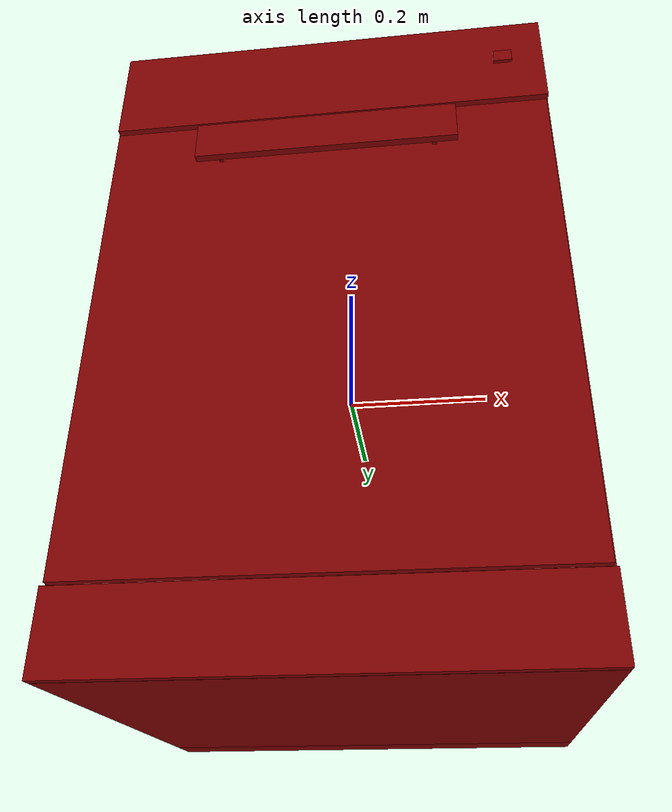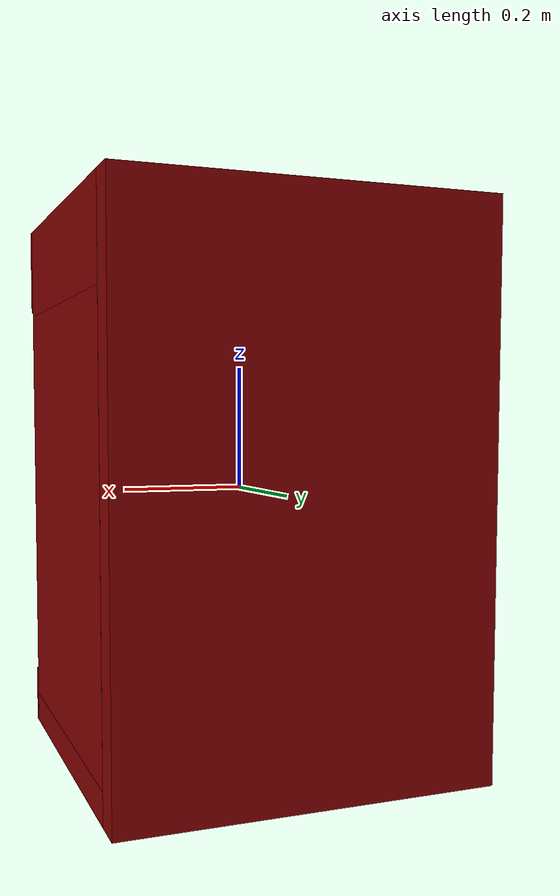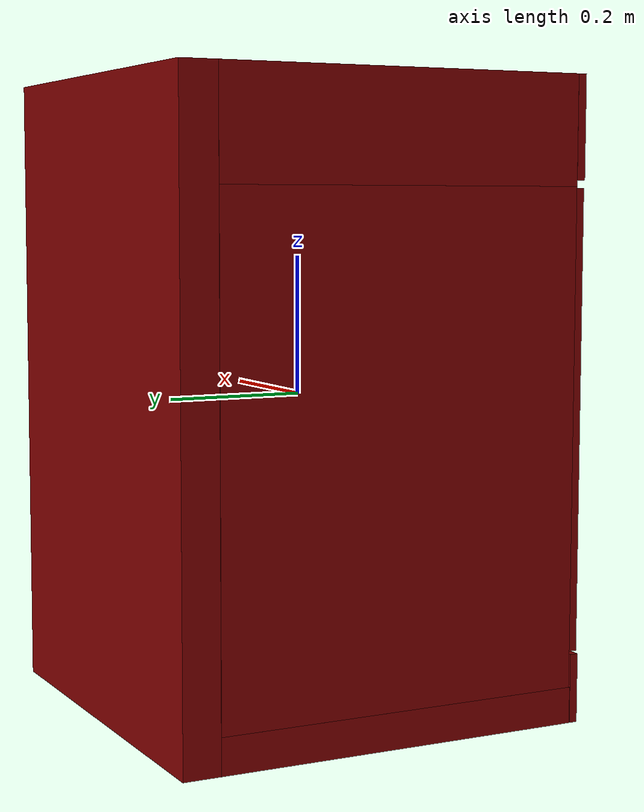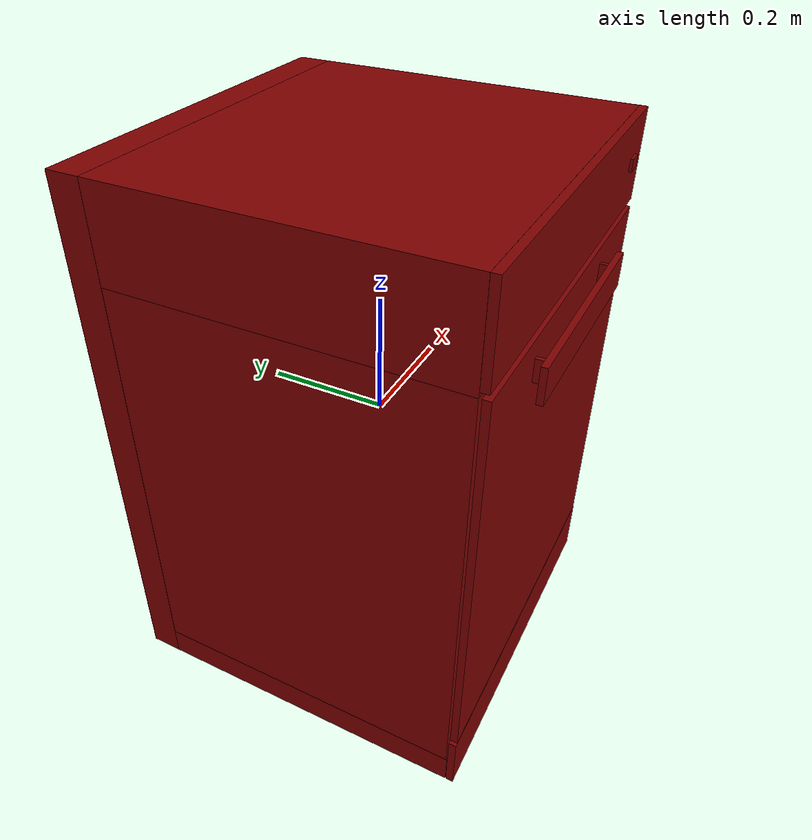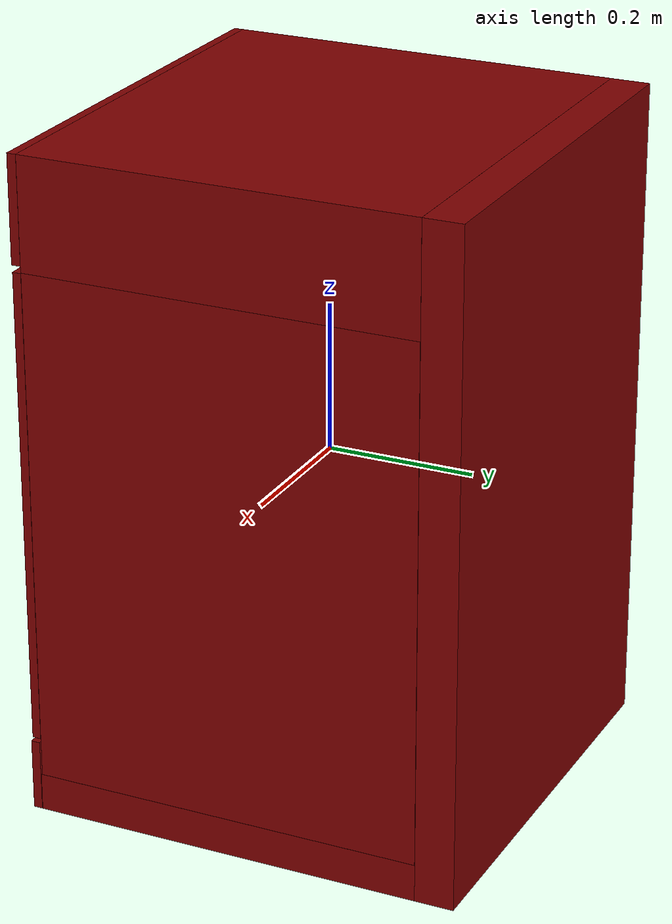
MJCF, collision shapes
<?xml version='1.0' encoding='UTF-8'?>
<mujoco model="model">
  <option timestep="0.002" gravity="0.0 0.0 -9.81"/>
  <compiler angle="radian"/>
  <asset>
    <mesh file="visuals/button_power.obj" name="button_power_vis"/>
    <mesh file="visuals/Body001.obj" name="Body001_vis"/>
    <mesh file="visuals/door.obj" name="door_vis"/>
    <mesh file="visuals/rack0.obj" name="rack0_vis"/>
    <mesh file="visuals/rack1.obj" name="rack1_vis"/>
    <texture file="visuals/T_BC001.png" name="Body001_material" type="2d"/>
    <material name="Body001_material" rgba="1 1 1 1.0" texture="Body001_material" shininess="0.1" specular="5"/>
    <texture file="visuals/T_BC001.png" name="button_power_material" type="2d"/>
    <material name="button_power_material" rgba="1 1 1 1.0" texture="button_power_material" shininess="0.1" specular="5"/>
    <texture file="visuals/T_BC001.png" name="door_material" type="2d"/>
    <material name="door_material" rgba="1 1 1 1.0" texture="door_material" shininess="0.1" specular="5"/>
    <texture file="visuals/T_BC001.png" name="rack0_material" type="2d"/>
    <material name="rack0_material" rgba="1 1 1 1.0" texture="rack0_material" shininess="0.1" specular="5"/>
    <texture file="visuals/T_BC001.png" name="rack1_material" type="2d"/>
    <material name="rack1_material" rgba="1 1 1 1.0" texture="rack1_material" shininess="0.1" specular="5"/>
  </asset>
  <default>
    <default class="visual">
      <geom conaffinity="0" contype="0" group="1" type="mesh"/>
    </default>
    <default class="collision">
      <geom group="0" rgba="0.5 0 0 0.5"/>
    </default>
    <default class="spawn">
      <geom group="0" rgba="1 1 1 0.5" contype="0" conaffinity="0"/>
      <site group="0" rgba="1 1 1 0.5"/>
    </default>
    <default class="region">
      <geom group="1" conaffinity="0" contype="0" rgba="0 1 0 0"/>
    </default>
  </default>
  <worldbody>
    <body>
      <body name="object">
        <geom mesh="Body001_vis" type="mesh" solimp="0.998 0.998 0.001" solref="0.001 1" friction="0.95 0.3 0.1" class="visual" material="Body001_material"/>
        <geom class="collision" type="box" pos="0.00000000 -0.00770898 0.37426713" size="0.29999998211860657 0.26645833253860474 0.07573285698890686" quat="1.0 0.0 0.0 0.0"/>
        <geom class="collision" type="box" pos="-0.00000001 0.28534019 0.00000001" size="0.2999919652938843 0.02650301903486252 0.4499873220920563" quat="1.0 0.0 0.0 0.0"/>
        <geom class="collision" type="box" pos="0.00000000 -0.28211290 -0.40113685" size="0.2999922037124634 0.005994515493512154 0.04886157438158989" quat="1.0 0.0 0.0 0.0"/>
        <geom class="collision" type="box" pos="-0.27947456 -0.00772024 -0.04921260" size="0.020524464547634125 0.26619383692741394 0.3494606614112854" quat="1.0 0.0 0.0 0.0"/>
        <geom class="collision" type="box" pos="0.27941176 -0.00772024 -0.04921260" size="0.020587289705872536 0.26619410514831543 0.34946101903915405" quat="1.0 0.0 0.0 0.0"/>
        <geom class="collision" type="box" pos="0.25198510 0.00864024 0.13149399" size="0.002584399189800024 0.2610485255718231 0.01211456023156643" quat="1.0 0.0 0.0 0.0"/>
        <geom class="collision" type="box" pos="0.25198510 0.00864025 -0.10460313" size="0.002584402449429035 0.2610487937927246 0.0121145723387599" quat="1.0 0.0 0.0 0.0"/>
        <geom class="collision" type="box" pos="0.25198510 0.00864024 -0.30527315" size="0.0025844057090580463 0.2610490620136261 0.01211458258330822" quat="1.0 0.0 0.0 0.0"/>
        <geom class="collision" type="box" pos="-0.25255904 0.00864025 -0.30527315" size="0.0025844089686870575 0.2610493302345276 0.01211459282785654" quat="1.0 0.0 0.0 0.0"/>
        <geom class="collision" type="box" pos="-0.25255904 0.00864024 -0.10460313" size="0.0025844122283160686 0.2610495984554291 0.012114603072404861" quat="1.0 0.0 0.0 0.0"/>
        <geom class="collision" type="box" pos="-0.25255904 0.00864025 0.13149402" size="0.00258441548794508 0.26104986667633057 0.012114614248275757" quat="1.0 0.0 0.0 0.0"/>
        <geom class="collision" type="box" pos="0.00000000 -0.28043491 0.37839848" size="0.29999998211860657 0.006145346909761429 0.07160153985023499" quat="1.0 0.0 0.0 0.0"/>
        <geom class="collision" type="box" pos="0.00000000 -0.00825672 -0.42434138" size="0.29999840259552 0.2670925259590149 0.025658268481492996" quat="1.0 0.0 0.0 0.0"/>
        <body name="button_power">
          <joint axis="0.0 1.0 0.0" pos="0.24419831 -0.28959248 0.38267449" limited="true" name="button_power_joint" range="0.0 0.0025" type="slide" damping="1" frictionloss="1" armature=".01" stiffness="4" springref="-1"/>
          <geom mesh="button_power_vis" type="mesh" solimp="0.998 0.998 0.001" solref="0.001 1" friction="0.95 0.3 0.1" class="visual" material="button_power_material"/>
          <geom class="collision" type="box" pos="0.24419831 -0.28993035 0.38319921" size="0.012506443075835705 0.002330385847017169 0.009549818933010101" quat="1.0 0.0 0.0 0.0"/>
        </body>
        <body name="door">
          <joint axis="1.0 0.0 0.0" pos="8.764e-05 -0.2881091391906059 -0.34843499272460937" limited="true" name="door_joint" range="0.0 0.5735987755982988" type="hinge" damping="1" frictionloss="10" armature="1" stiffness="2"/>
          <geom mesh="door_vis" type="mesh" solimp="0.998 0.998 0.001" solref="0.001 1" friction="0.95 0.3 0.1" class="visual" material="door_material"/>
          <geom class="collision" type="box" pos="-0.00021719 -0.30869019 0.24703217" size="0.17370398342609406 0.004868106916546822 0.027860576286911964" quat="1.0 0.0 0.0 0.0" name="door_handle_main"/>
          <geom class="collision" type="box" pos="0.00008764 -0.28231096 -0.02620370" size="0.29615750908851624 0.005798179190605879 0.3222312927246094" quat="1.0 0.0 0.0 0.0" name="door_main"/>
          <geom class="collision" type="box" pos="-0.14340647 -0.29477638 0.24812222" size="0.003253198228776455 0.00895136408507824 0.017519112676382065" quat="1.0 0.0 0.0 0.0"/>
          <geom class="collision" type="box" pos="0.14340471 -0.29477638 0.24812222" size="0.0032532019540667534 0.008951375260949135 0.017519138753414154" quat="1.0 0.0 0.0 0.0"/>
        </body>
        <body name="rack0">
          <geom class="region" name="reg_rack0" type="box" pos="-0.0016832099999999905 0.009233039999999998 -0.058568735" size="0.22452452 0.21593608 0.112125675"/>
          <joint axis="0.0 -1.0 0.0" pos="-0.00181710 0.00813950 -0.12074429" limited="true" name="rack0_joint" range="0.0 0.2" type="slide" damping="1" frictionloss="1" armature=".01" stiffness="0.05"/>
          <geom mesh="rack0_vis" type="mesh" solimp="0.998 0.998 0.001" solref="0.001 1" friction="0.95 0.3 0.1" class="visual" material="rack0_material"/>
          <geom class="collision" type="box" pos="-0.04981561 0.00938215 -0.13919708" size="0.002390053356066346 0.2221410870552063 0.03612683713436127" quat="1.0 0.0 0.0 0.0"/>
          <geom class="collision" type="box" pos="0.00293722 0.00938215 -0.13919708" size="0.0023900538217276335 0.2221413105726242 0.036126863211393356" quat="1.0 0.0 0.0 0.0"/>
          <geom class="collision" type="box" pos="0.05638362 0.00938215 -0.13919708" size="0.002390058245509863 0.22214153409004211 0.036126889288425446" quat="1.0 0.0 0.0 0.0"/>
          <geom class="collision" type="box" pos="0.10855550 0.00938215 -0.13919708" size="0.002390065463259816 0.22214175760746002 0.03612691909074783" quat="1.0 0.0 0.0 0.0"/>
          <geom class="collision" type="box" pos="-0.00189847 0.00938214 -0.17874247" size="0.23444411158561707 0.22214198112487793 0.0034182185772806406" quat="1.0 0.0 0.0 0.0"/>
          <geom class="collision" type="box" pos="-0.00189847 -0.21881811 -0.12302351" size="0.23444433510303497 0.0062279729172587395 0.05913687124848366" quat="1.0 0.0 0.0 0.0"/>
          <geom class="collision" type="box" pos="-0.00189847 0.23602421 -0.12302351" size="0.2344440221786499 0.0057519166730344296 0.05913679301738739" quat="1.0 0.0 0.0 0.0"/>
          <geom class="collision" type="box" pos="0.23687360 0.00797127 -0.11960525" size="0.009551235474646091 0.23304185271263123 0.055718742311000824" quat="1.0 0.0 0.0 0.0"/>
          <geom class="collision" type="box" pos="-0.10221976 0.00938215 -0.13919708" size="0.0023900687228888273 0.22214286029338837 0.036127056926488876" quat="1.0 0.0 0.0 0.0"/>
          <geom class="collision" type="box" pos="-0.24000239 0.00797127 -0.11960525" size="0.008370323106646538 0.23304226994514465 0.05571885406970978" quat="1.0 0.0 0.0 0.0"/>
        </body>
        <body name="rack1">
          <geom class="region" name="reg_rack1" type="box" pos="-0.0016832099999999905 0.009233039999999998 0.1802737" size="0.22452452 0.21593608 0.11363967999999999"/>
          <joint axis="0.0 -1.0 0.0" pos="-0.00181710 0.00813950 0.11725886" limited="true" name="rack1_joint" range="0.0 0.25" type="slide" damping="1" frictionloss="1" armature=".01" stiffness="0.05"/>
          <geom mesh="rack1_vis" type="mesh" solimp="0.998 0.998 0.001" solref="0.001 1" friction="0.95 0.3 0.1" class="visual" material="rack1_material"/>
          <geom class="collision" type="box" pos="-0.24000239 0.00797127 0.11865716" size="0.008370185270905495 0.23303784430027008 0.05664840340614319" quat="1.0 0.0 0.0 0.0"/>
          <geom class="collision" type="box" pos="0.23687360 0.00797127 0.11865716" size="0.009551117196679115 0.23303808271884918 0.056648459285497665" quat="1.0 0.0 0.0 0.0"/>
          <geom class="collision" type="box" pos="-0.00189847 0.23602421 0.11674480" size="0.23444069921970367 0.005751864518970251 0.05856071412563324" quat="1.0 0.0 0.0 0.0"/>
          <geom class="collision" type="box" pos="-0.00189847 -0.21881811 0.11674480" size="0.23444145917892456 0.006227883044630289 0.05856090411543846" quat="1.0 0.0 0.0 0.0"/>
          <geom class="collision" type="box" pos="-0.00189847 0.00938214 0.06009518" size="0.23444189131259918 0.22213976085186005 0.0019123178208246827" quat="1.0 0.0 0.0 0.0"/>
          <geom class="collision" type="box" pos="0.10855550 0.00938215 0.09906533" size="0.0023900517262518406 0.22213998436927795 0.03705734759569168" quat="1.0 0.0 0.0 0.0"/>
          <geom class="collision" type="box" pos="0.05638362 0.00938215 0.09906533" size="0.0023900477681308985 0.22214020788669586 0.03705737367272377" quat="1.0 0.0 0.0 0.0"/>
          <geom class="collision" type="box" pos="0.00293722 0.00938215 0.09906533" size="0.002390046836808324 0.22214043140411377 0.03705740347504616" quat="1.0 0.0 0.0 0.0"/>
          <geom class="collision" type="box" pos="-0.04981561 0.00938215 0.09906533" size="0.0023900498636066914 0.22214065492153168 0.03705742955207825" quat="1.0 0.0 0.0 0.0"/>
          <geom class="collision" type="box" pos="-0.10221976 0.00938215 0.09906533" size="0.0023900531232357025 0.2221408635377884 0.037057459354400635" quat="1.0 0.0 0.0 0.0"/>
        </body>
        <geom class="region" name="reg_int" type="box" pos="2.644499999999994e-05 -0.007356539999999995 -0.04957385" size="0.239346165 0.26125589000000005 0.34348723000000003"/>
        <geom class="region" name="reg_main" type="box" pos="-9.999999994736442e-09 0.011867514999999995 0.0" size="0.30099998 0.300977005 0.45099999"/>
      </body>
    </body>
  </worldbody>
  <actuator>
    <motor name="button_power_joint_actuator" joint="button_power_joint" gear="0.5"/>
    <motor name="door_joint_actuator" joint="door_joint" gear="50"/>
    <motor name="rack0_joint_actuator" joint="rack0_joint" gear="50"/>
    <motor name="rack1_joint_actuator" joint="rack1_joint" gear="50"/>
  </actuator>
</mujoco>
